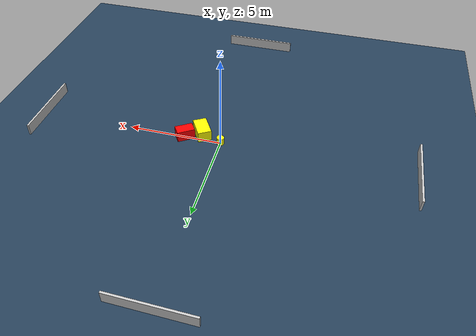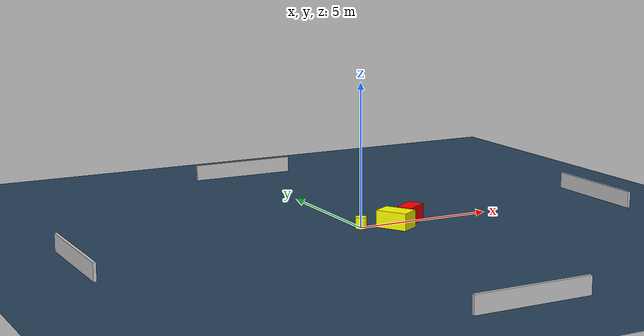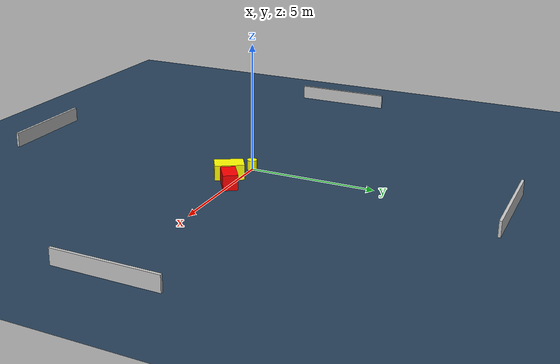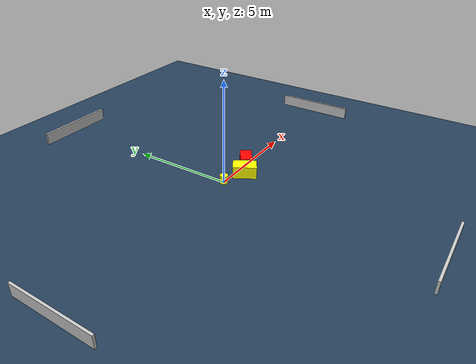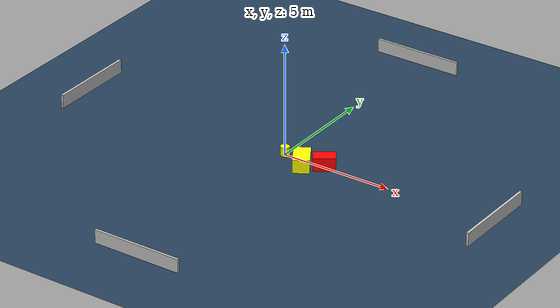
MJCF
<?xml version="1.0" ?>
<mujoco model="generated_environment">
  <option timestep="0.01" integrator="RK4" cone="elliptic"/>
  <default>
    <geom density="1"/>
  </default>
  <asset>
    <texture builtin="gradient" height="3072" name="skybox" rgb1="0.3 0.5 0.7" rgb2="0 0 0" type="skybox" width="512"/>
    <texture builtin="checker" height="300" name="groundplane" rgb1="0.2 0.3 0.4" rgb2="0.1 0.2 0.3" type="2d" width="300"/>
    <material name="groundplane" reflectance="0.2" texrepeat="5 5" texture="groundplane"/>
  </asset>
  <worldbody>
    <light dir="0 0 -1" directional="true" pos="0 0 1.5"/>
    <geom condim="3" friction="0.5 0.005 0.001" material="groundplane" name="floor" pos="0 0 0" size="0 0 0.05" type="plane"/>
    <body name="walls">
      <geom name="wall_1" condim="4" pos="-10.0 0.0 0.3" rgba="0.800000011920929 0.800000011920929 0.800000011920929 1.0" size="0.05 2.0 0.3" type="box"/>
      <geom name="wall_2" condim="4" pos="10.0 0.0 0.3" rgba="0.800000011920929 0.800000011920929 0.800000011920929 1.0" size="0.05 2.0 0.3" type="box"/>
      <geom name="wall_3" condim="4" pos="0.0 -10.0 0.3" rgba="0.800000011920929 0.800000011920929 0.800000011920929 1.0" size="2.0 0.05 0.3" type="box"/>
      <geom name="wall_4" condim="4" pos="0.0 10.0 0.3" rgba="0.800000011920929 0.800000011920929 0.800000011920929 1.0" size="2.0 0.05 0.3" type="box"/>
    </body>
    <body name="robot">
      <joint name="joint_x" type="slide" pos="0 0 0" axis="1 0 0"/>
      <joint name="joint_y" type="slide" pos="0 0 0" axis="0 1 0"/>
      <geom name="robot" type="cylinder" pos="0.0 0.0 0.2" size="0.2 0.2 0.0" mass="5.0" friction="1.0 0.005 0.0001" condim="4" rgba="1.0 1.0 0.0 1.0"/>
    </body>
    <body name="obstacle_1_movable">
      <geom name="obstacle_1_movable" condim="4" pos="1.1237663161203126 -0.4369731364433752 0.3" euler="0 0 301.21291803492034" friction="0.0 0.005 0.001" rgba="1.0 1.0 0.0 1.0" size="0.5706386406546509 0.36171210194154013 0.3" type="box" mass="0.1"/>
      <joint type="free"/>
    </body>
    <body name="obstacle_2_static">
      <geom name="obstacle_2_static" condim="4" pos="1.9419620997397378 -0.009574208634923271 0.3" euler="0 0 213.81361467661063" friction="0.0 0.005 0.001" rgba="1.0 0.0 0.0 1.0" size="0.47092465925182003 0.28527931986957106 0.3" type="box"/>
    </body>
  </worldbody>
  <actuator>
    <motor name="actuator_x" joint="joint_x" gear="1" ctrlrange="-1 1"/>
    <motor name="actuator_y" joint="joint_y" gear="1" ctrlrange="-1 1"/>
  </actuator>
</mujoco>
